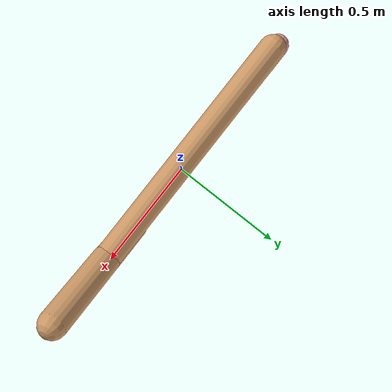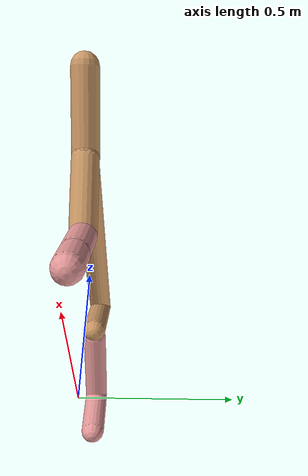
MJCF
<mujoco model="cheetah">
  <compiler angle="radian" coordinate="local" inertiafromgeom="true" settotalmass="14" />
  <default>
    <joint armature=".1" damping=".01" limited="true" solimplimit="0 .8 .03" solreflimit=".02 1" stiffness="8" />
    <geom conaffinity="0" condim="3" contype="1" friction="0.8 .1 .1" rgba="0.8 0.6 .4 1" solimp="0.0 0.8 0.01" solref="0.02 1" />
    <motor ctrllimited="true" ctrlrange="-1 1" />
  </default>
  <size nstack="300000" nuser_geom="1" />
  <option gravity="0 0 -9.81" timestep="0.01" />
  <worldbody>
    <body name="torso" pos="0.0 0.0 0.6949902969648445">
      <joint armature="0" axis="1 0 0" damping="0" limited="false" name="ignorex" pos="0 0 0" stiffness="0" type="slide" />
      <joint armature="0" axis="0 0 1" damping="0" limited="false" name="ignorez" pos="0 0 0" stiffness="0" type="slide" />
      <joint armature="0" axis="0 1 0" damping="0" limited="false" name="ignorey" pos="0 0 0" stiffness="0" type="hinge" />
      <geom fromto="-0.5 0.0 0.0 0.41600051421591916 0.0 0.0" name="torso" size="0.04601428001575945" type="capsule" />
      <geom axisangle="0 1 0 .87" name="head" pos="0.5160005142159191 0.0 0.1" size="0.04925611909750326 0.15" type="capsule" />

      <body name="bthigh" pos="-.5 0 0">
        <joint axis="0 1 0" damping="6" name="bthigh" pos="0 0 0" range="-.52 1.05" stiffness="240" type="hinge" />
        <geom axisangle="0 1 0 -3.8" name="bthigh" pos="0.09960430745497802 0.0 -0.12948559969147141" size="0.045495067034669844 0.14435101597276953" type="capsule" />
        <body name="bshin" pos="0.15920861490995603 0.0 -0.24897119938294282">
          <joint axis="0 1 0" damping="4.5" name="bshin" pos="0 0 0" range="-.785 .785" stiffness="180" type="hinge" />
          <geom axisangle="0 1 0 -2.03" name="bshin" pos="-0.13939951486846944 0.0 -0.06969975743423472" rgba="0.9 0.6 0.6 1" size="0.045495067034669844 0.14932863721320985" type="capsule" />
          <body name="bfoot" pos="-0.2787990297369389 0.0 -0.13939951486846944">
            <joint axis="0 1 0" damping="3" name="bfoot" pos="0 0 0" range="-.4 .785" stiffness="120" type="hinge" />
            <geom axisangle="0 1 0 -.27" name="bfoot" pos="0.029875689777335006 0.0 -0.09659806361338319" rgba="0.9 0.6 0.6 1" size="0.045495067034669844 0.09357927932027818" type="capsule" />
            <inertial mass="10" />
          </body>
        </body>
      </body>
      <body name="fthigh" pos="0.4160005142159191 0.0 0.0">
        <joint axis="0 1 0" damping="4.5" name="fthigh" pos="0 0 0" range="-1.5 0.8" stiffness="180" type="hinge" />
        <geom axisangle="0 1 0 .52" name="fthigh" pos="-0.06964882376633472 0.0 -0.11939798359943092" size="0.04888296278847118 0.132303043406197" type="capsule" />
        <body name="fshin" pos="-0.13929764753266943 0.0 -0.23879596719886184">
          <joint axis="0 1 0" damping="3" name="fshin" pos="0 0 0" range="-1.2 1.1" stiffness="120" type="hinge" />
          <geom axisangle="0 1 0 -.6" name="fshin" pos="0.06467477805094897 0.0 -0.08954969268592934" rgba="0.9 0.6 0.6 1" size="0.04888296278847118 0.10544453083501414" type="capsule" />
          <body name="ffoot" pos="0.12934955610189794 0.0 -0.17909938537185868">
            <joint axis="0 1 0" damping="1.5" name="ffoot" pos="0 0 0" range="-3.1 -0.3" stiffness="60" type="hinge" />
            <geom axisangle="0 1 0 -.6" name="ffoot" pos="0.044801639700571064 0.0 -0.06969143953422166" rgba="0.9 0.6 0.6 1" size="0.04888296278847118 0.06963318074010369" type="capsule" />
            <inertial mass="10" />
          </body>
        </body>
      </body>
    </body>
  </worldbody>
  <actuator>
    <motor gear="120" joint="bthigh" name="bthigh" />
    <motor gear="90" joint="bshin" name="bshin" />
    <motor gear="60" joint="bfoot" name="bfoot" />
    <motor gear="120" joint="fthigh" name="fthigh" />
    <motor gear="60" joint="fshin" name="fshin" />
    <motor gear="30" joint="ffoot" name="ffoot" />
  </actuator>
</mujoco>
